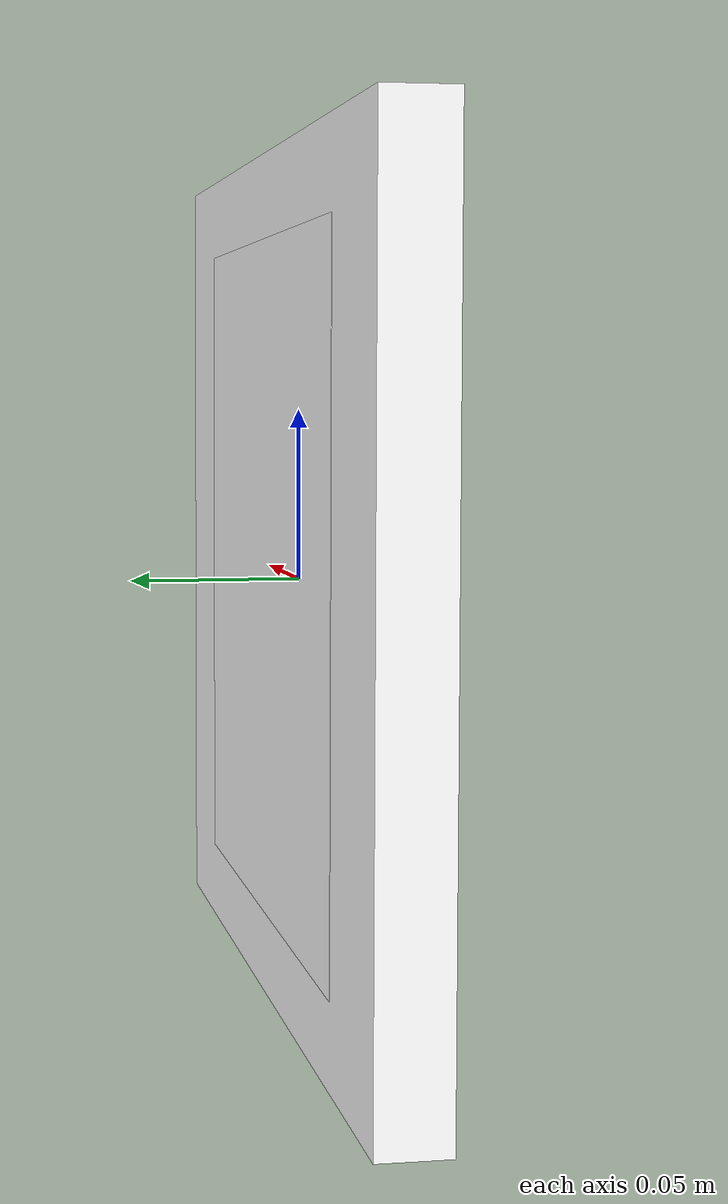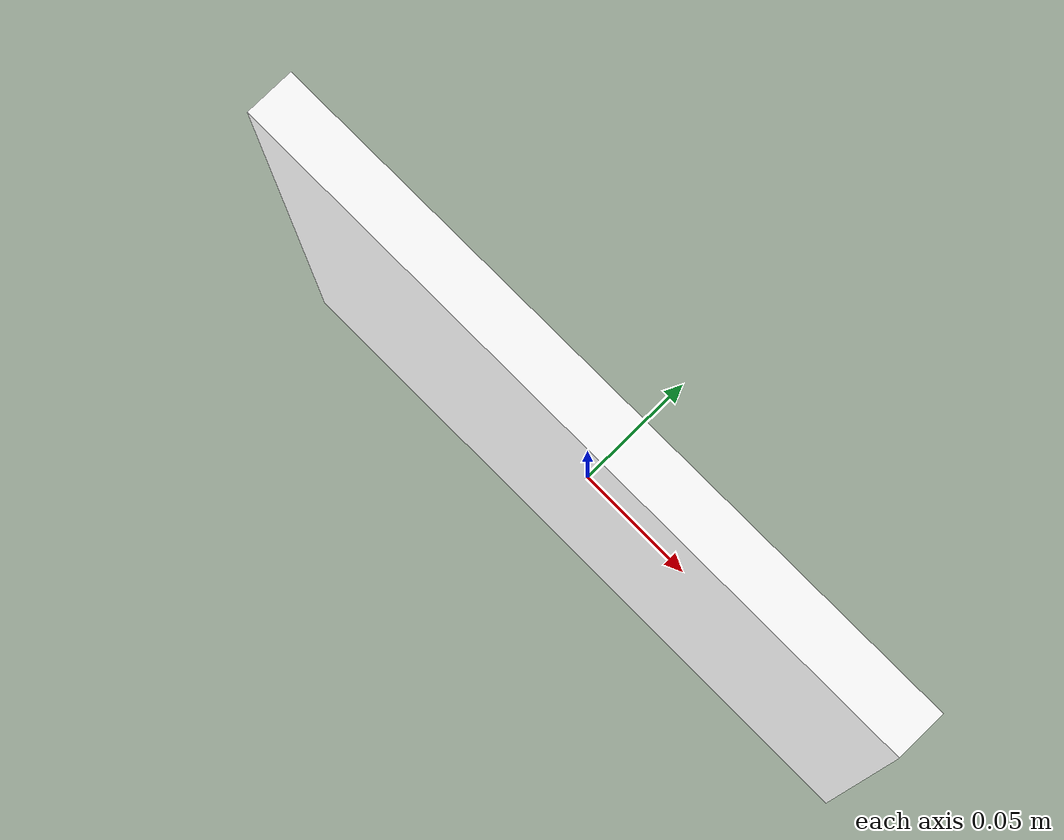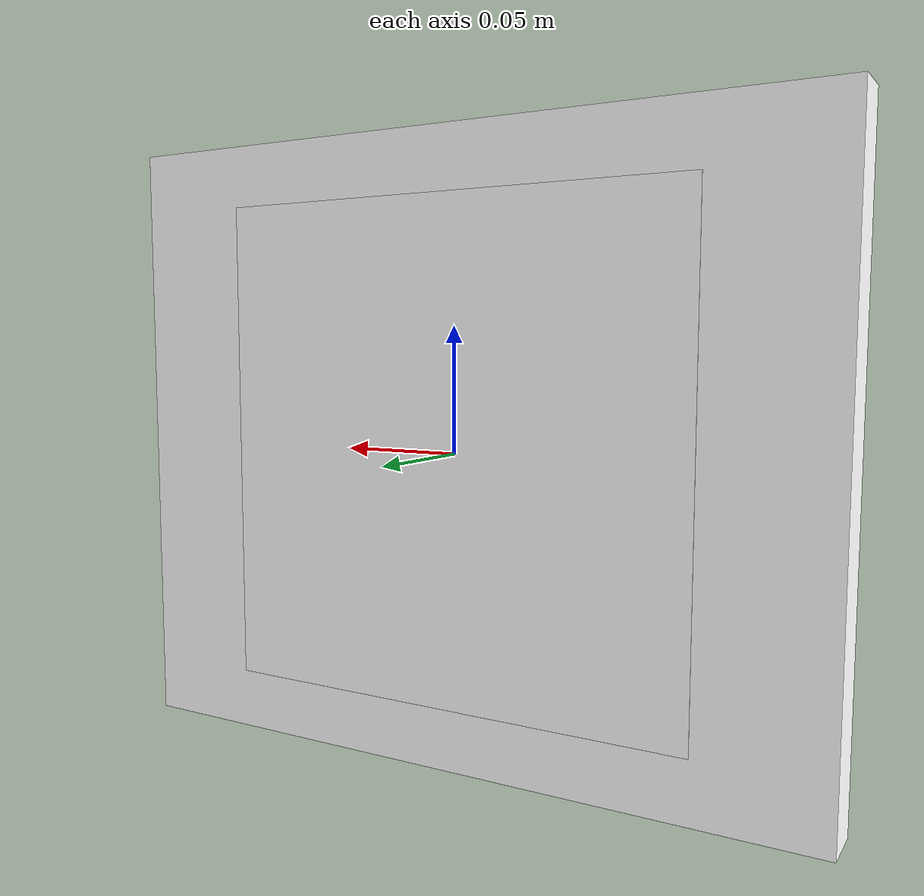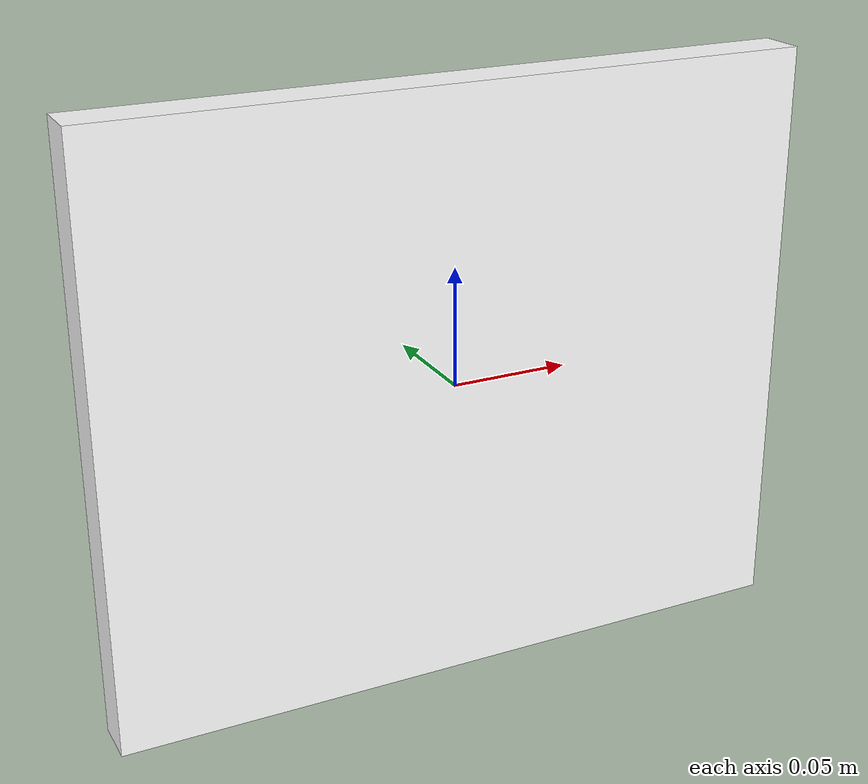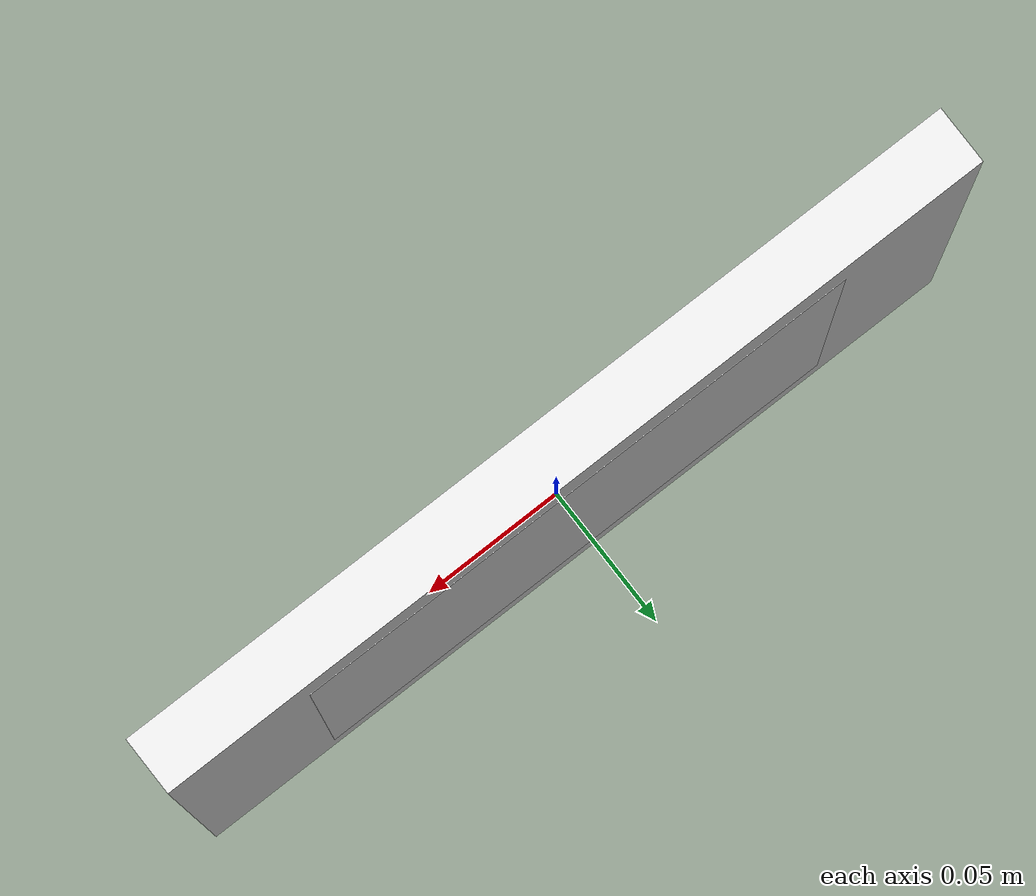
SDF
<?xml version="1.0" ?>
<sdf version="1.10">
  <model name="aruco_tag_whiteboard">
    <!-- This is a static fixture -->
    <static>true</static>

    <!-- Whiteboard body -->
    <link name="board_link">
      <pose>0 0 0 0 0 0</pose>

      <!-- Collision (simple box) -->
      <collision name="board_collision">
        <geometry>
          <box>
            <!-- size: length x width x height -->
            <size>0.30 0.02 0.25</size>
          </box>
        </geometry>
      </collision>

      <!-- Whiteboard visual -->
      <visual name="board_visual">
        <geometry>
          <box>
            <size>0.30 0.02 0.25</size>
          </box>
        </geometry>
        <material>
          <ambient>1 1 1 1</ambient>
          <diffuse>1 1 1 1</diffuse>
          <specular>0.2 0.2 0.2 1</specular>
        </material>
      </visual>

      <!-- AprilTag / ArUco image on the front face -->
      <visual name="tag_visual_front">
        <!-- Slightly offset in front of the board -->
        <pose>0 0.0105 0 -1.5708 0 0</pose>
        <geometry>
          <plane>
            <normal>0 0 1</normal>
            <size>0.20 0.20</size>
          </plane>
        </geometry>
        <material>
          <ambient>1 1 1 1</ambient>
          <diffuse>1 1 1 1</diffuse>
          <specular>0.1 0.1 0.1 1</specular>
          <pbr>
            <metal>
              <albedo_map>materials/textures/apriltag_36h11_id1.png</albedo_map>
              <roughness>0.9</roughness>
              <metalness>0.0</metalness>
            </metal>
          </pbr>
        </material>
      </visual>

    </link>
  </model>
</sdf>
